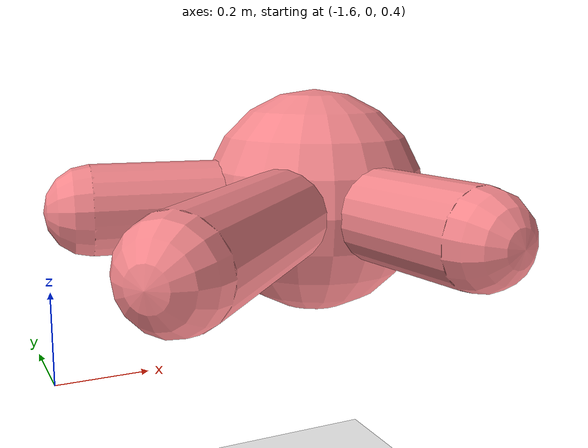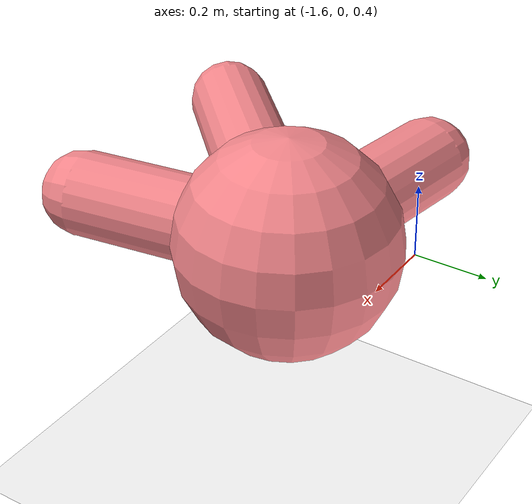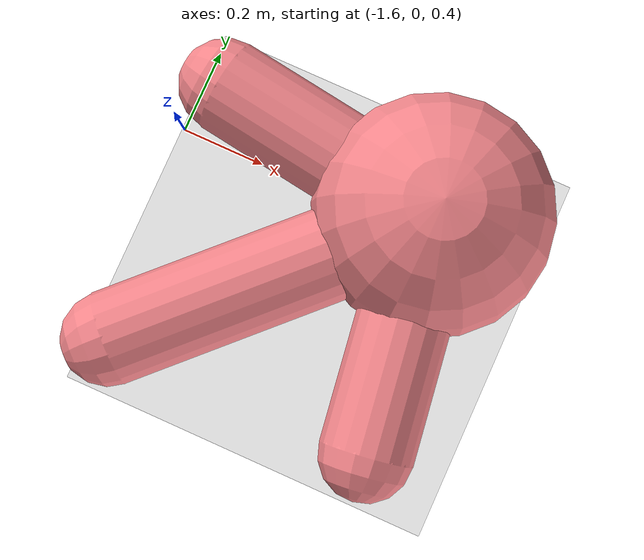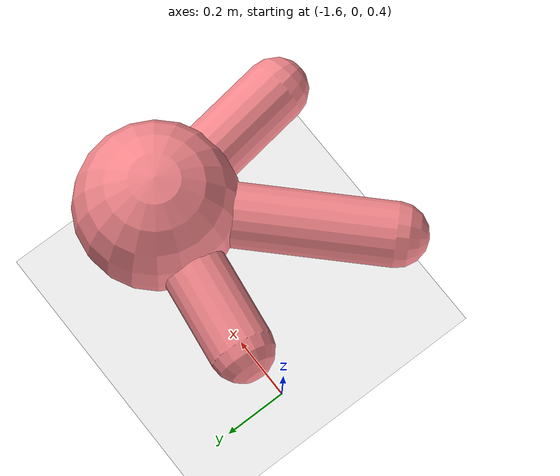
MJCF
<mujoco model="evo_ant">
  <compiler angle="degree" coordinate="local" inertiafromgeom="true"/>
  <option integrator="RK4" timestep="0.01"/>
  <default>
    <joint armature="1" damping="1" limited="true"/>
    <geom conaffinity="0" condim="3" density="5.0" friction="1 0.5 0.5" margin="0.01" rgba=".98 .54 .56 1."/>
    <motor ctrllimited="true" ctrlrange="-.4 .4"/>
  </default>
  <visual>
    <headlight ambient=".1 .1 .1" diffuse=".6 .6 .6" specular="0.3 0.3 0.3"/>
    <map znear=".01"/>
    <quality shadowsize="16384"/>
  </visual>
  <worldbody>
    <light cutoff="100" diffuse="1 1 1" dir="-0 0 -1.3" directional="true" exponent="1" pos="0 0 1.3" specular=".1 .1 .1"/>
    <geom conaffinity="1" condim="3" name="floor" pos="0 0 0" rgba="1 1 1 1" size="200 200 .125" type="plane" material="grid_new"/>
    <body name="0" pos="-1 0 0.75" euler="0 0 180">
      <geom pos="0 0 0" size="0.25" type="sphere"/>
      <joint armature="0" damping="0" limited="false" margin="0.01" name="0_joint" pos="0 0 0" range="-30 30" type="free"/>
      <body name="1" pos="0 0 0">
        <geom fromto="-0.020711 -0.020711 0 0.494975 0.494975 0" size="0.097967" type="capsule"/>
        <joint axis="-0.707107 0.707107 0" name="1_joint" pos="0 0 0" range="-30 30" type="hinge"/>
      </body>
      <body name="2" pos="0 0 0">
        <geom fromto="0.004142 -0.028995 0 -0.070711 0.494975 0" size="0.097967" type="capsule"/>
        <joint axis="-0.707107 -0.707107 0" name="2_joint" pos="0 0 0" range="-30 30" type="hinge"/>
      </body>
      <body name="3" pos="0 0 0">
        <geom fromto="0.020711 0.020711 0 -0.070711 -0.070711 0" size="0.097967" type="capsule"/>
        <joint axis="0.707107 -0.707107 0" name="3_joint" pos="0 0 0" range="-30 30" type="hinge"/>
      </body>
      <body name="4" pos="0 0 0">
        <geom fromto="-0.028995 0.004142 0 0.494975 -0.070711 0" size="0.097967" type="capsule"/>
        <joint axis="0.707107 0.707107 0" name="4_joint" pos="0 0 0" range="-30 30" type="hinge"/>
      </body>
    </body>
  </worldbody>
  <actuator>
    <motor ctrllimited="true" ctrlrange="-1.0 1.0" joint="1_joint" gear="295.049081" name="1_joint"/>
    <motor ctrllimited="true" ctrlrange="-1.0 1.0" joint="2_joint" gear="295.049081" name="2_joint"/>
    <motor ctrllimited="true" ctrlrange="-1.0 1.0" joint="3_joint" gear="295.049081" name="3_joint"/>
    <motor ctrllimited="true" ctrlrange="-1.0 1.0" joint="4_joint" gear="295.049081" name="4_joint"/>
  </actuator>
  <asset>
    <texture type="skybox" builtin="gradient" rgb1=".4 .5 .6" rgb2="0 0 0" width="100" height="100"/>
    <texture builtin="flat" height="1278" mark="cross" markrgb="1 1 1" name="texgeom" random="0.01" rgb1="1 1 1" rgb2="0.8 0.6 0.4" type="cube" width="127"/>
    <texture builtin="checker" height="100" name="texplane" rgb1="0.1 0.1 0.1" rgb2="0.1 0.1 0.1" type="2d" width="100"/>
    <material name="MatPlane" reflectance="0.5" shininess="1" specular="1" texrepeat="60 60" texture="texplane"/>
    <material name="geom" texture="texgeom" texuniform="true"/>
    <texture name="grid_new" type="2d" builtin="checker" rgb1=".1 .1 .1" rgb2=".1 .1 .1" width="100" height="100" markrgb="0.2 0.2 0.2" mark="edge"/>
    <material name="grid_new" texture="grid_new" texrepeat="1 1" texuniform="true" reflectance=".2"/>
  </asset>
</mujoco>
